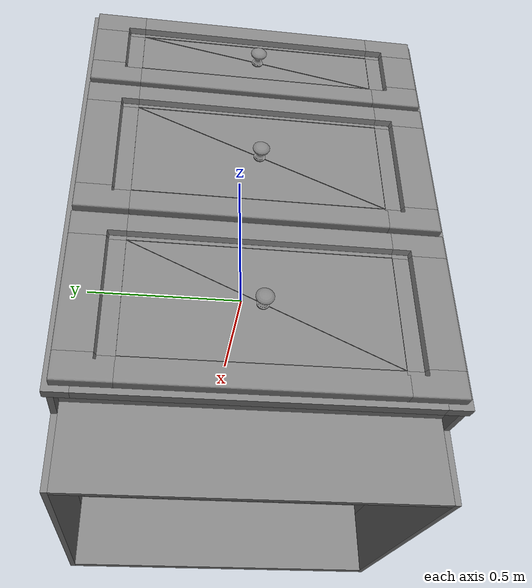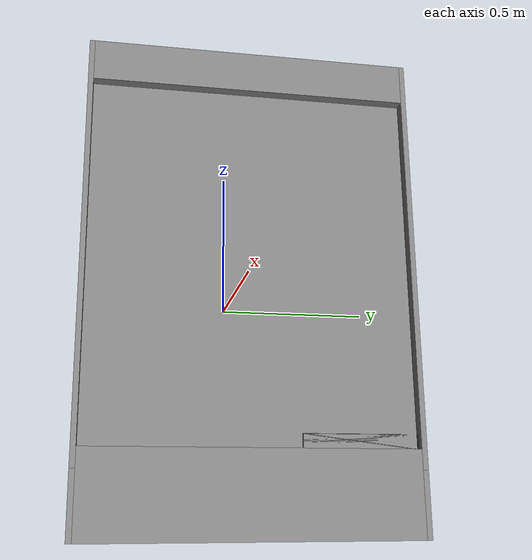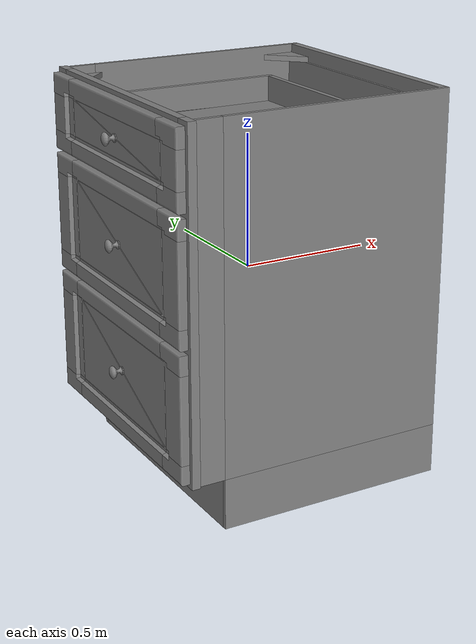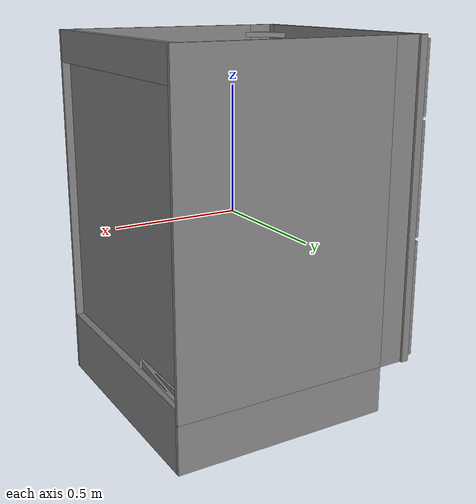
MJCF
<mujoco model="partnet_1566915c8a69d58812de5317fe5b354f">
    <compiler angle="radian" />
    <size njmax="500" nconmax="100" />
    <asset>
        <mesh name="original-86" file="original-86.stl" />
        <mesh name="original-85" file="original-85.stl" />
        <mesh name="original-82" file="original-82.stl" />
        <mesh name="original-79" file="original-79.stl" />
        <mesh name="original-83" file="original-83.stl" />
        <mesh name="original-80" file="original-80.stl" />
        <mesh name="original-84" file="original-84.stl" />
        <mesh name="original-81" file="original-81.stl" />
        <mesh name="original-88" file="original-88.stl" />
        <mesh name="original-72" file="original-72.stl" />
        <mesh name="original-89" file="original-89.stl" />
        <mesh name="original-71" file="original-71.stl" />
        <mesh name="original-76" file="original-76.stl" />
        <mesh name="original-77" file="original-77.stl" />
        <mesh name="original-75" file="original-75.stl" />
        <mesh name="original-74" file="original-74.stl" />
        <mesh name="original-90" file="original-90.stl" />
        <mesh name="original-50" file="original-50.stl" />
        <mesh name="original-57" file="original-57.stl" />
        <mesh name="original-63" file="original-63.stl" />
        <mesh name="original-60" file="original-60.stl" />
        <mesh name="original-62" file="original-62.stl" />
        <mesh name="original-59" file="original-59.stl" />
        <mesh name="original-64" file="original-64.stl" />
        <mesh name="original-58" file="original-58.stl" />
        <mesh name="original-61" file="original-61.stl" />
        <mesh name="original-66" file="original-66.stl" />
        <mesh name="original-67" file="original-67.stl" />
        <mesh name="original-49" file="original-49.stl" />
        <mesh name="original-54" file="original-54.stl" />
        <mesh name="original-55" file="original-55.stl" />
        <mesh name="original-53" file="original-53.stl" />
        <mesh name="original-52" file="original-52.stl" />
        <mesh name="original-68" file="original-68.stl" />
        <mesh name="original-28" file="original-28.stl" />
        <mesh name="original-44" file="original-44.stl" />
        <mesh name="original-41" file="original-41.stl" />
        <mesh name="original-35" file="original-35.stl" />
        <mesh name="original-39" file="original-39.stl" />
        <mesh name="original-36" file="original-36.stl" />
        <mesh name="original-42" file="original-42.stl" />
        <mesh name="original-37" file="original-37.stl" />
        <mesh name="original-40" file="original-40.stl" />
        <mesh name="original-38" file="original-38.stl" />
        <mesh name="original-45" file="original-45.stl" />
        <mesh name="original-27" file="original-27.stl" />
        <mesh name="original-32" file="original-32.stl" />
        <mesh name="original-33" file="original-33.stl" />
        <mesh name="original-30" file="original-30.stl" />
        <mesh name="original-31" file="original-31.stl" />
        <mesh name="original-46" file="original-46.stl" />
        <mesh name="original-3" file="original-3.stl" />
        <mesh name="original-7" file="original-7.stl" />
        <mesh name="original-8" file="original-8.stl" />
        <mesh name="original-24" file="original-24.stl" />
        <mesh name="original-17" file="original-17.stl" />
        <mesh name="original-6" file="original-6.stl" />
        <mesh name="original-4" file="original-4.stl" />
        <mesh name="original-11" file="original-11.stl" />
        <mesh name="original-10" file="original-10.stl" />
        <mesh name="original-15" file="original-15.stl" />
        <mesh name="original-14" file="original-14.stl" />
        <mesh name="original-91" file="original-91.stl" />
        <mesh name="original-5" file="original-5.stl" />
        <mesh name="original-2" file="original-2.stl" />
        <mesh name="original-22" file="original-22.stl" />
        <mesh name="original-23" file="original-23.stl" />
        <mesh name="original-21" file="original-21.stl" />
        <mesh name="original-20" file="original-20.stl" />
        <mesh name="original-18" file="original-18.stl" />
        <mesh name="original-12" file="original-12.stl" />
        <mesh name="original-19" file="original-19.stl" />
        <mesh name="original-16" file="original-16.stl" />
    </asset>
    <worldbody>
    <body>
        <body name="object" >
        <geom quat="0.5 0.5 -0.5 -0.5" type="mesh" group="0" mesh="original-3" />
        <geom quat="0.5 0.5 -0.5 -0.5" type="mesh" group="0" mesh="original-7" />
        <geom quat="0.5 0.5 -0.5 -0.5" type="mesh" group="0" mesh="original-8" />
        <geom quat="0.5 0.5 -0.5 -0.5" type="mesh" group="0" mesh="original-24" />
        <geom quat="0.5 0.5 -0.5 -0.5" type="mesh" group="0" mesh="original-17" />
        <geom quat="0.5 0.5 -0.5 -0.5" type="mesh" group="0" mesh="original-6" />
        <geom quat="0.5 0.5 -0.5 -0.5" type="mesh" group="0" mesh="original-4" />
        <geom quat="0.5 0.5 -0.5 -0.5" type="mesh" group="0" mesh="original-11" />
        <geom quat="0.5 0.5 -0.5 -0.5" type="mesh" group="0" mesh="original-10" />
        <geom quat="0.5 0.5 -0.5 -0.5" type="mesh" group="0" mesh="original-15" />
        <geom quat="0.5 0.5 -0.5 -0.5" type="mesh" group="0" mesh="original-14" />
        <geom quat="0.5 0.5 -0.5 -0.5" type="mesh" group="0" mesh="original-91" />
        <geom quat="0.5 0.5 -0.5 -0.5" type="mesh" group="0" mesh="original-5" />
        <geom quat="0.5 0.5 -0.5 -0.5" type="mesh" group="0" mesh="original-2" />
        <geom quat="0.5 0.5 -0.5 -0.5" type="mesh" group="0" mesh="original-22" />
        <geom quat="0.5 0.5 -0.5 -0.5" type="mesh" group="0" mesh="original-23" />
        <geom quat="0.5 0.5 -0.5 -0.5" type="mesh" group="0" mesh="original-21" />
        <geom quat="0.5 0.5 -0.5 -0.5" type="mesh" group="0" mesh="original-20" />
        <geom quat="0.5 0.5 -0.5 -0.5" type="mesh" group="0" mesh="original-18" />
        <geom quat="0.5 0.5 -0.5 -0.5" type="mesh" group="0" mesh="original-12" />
        <geom quat="0.5 0.5 -0.5 -0.5" type="mesh" group="0" mesh="original-19" />
        <geom quat="0.5 0.5 -0.5 -0.5" type="mesh" group="0" mesh="original-16" />
        <body name="link_2" pos="-0.513337 -0.0525293 -0.297055" quat="0.5 0.5 -0.5 -0.5">
            <inertial pos="-0.0641765 -0.0544198 -0.339475" quat="0.706943 -0.0152278 0.0152368 0.706942" mass="44.3724" diaginertia="8.44742 5.25753 4.41421" />
            <joint name="joint_2" pos="0 0 0" axis="0 0 1" type="slide" limited="true" range="0 0.8" />
            <geom pos="-0.0525293 0.297055 -0.513337" type="mesh" group="0" mesh="original-86" />
            <geom pos="-0.0525293 0.297055 -0.513337" type="mesh" group="0" mesh="original-85" />
            <geom pos="-0.0525293 0.297055 -0.513337" type="mesh" group="0" mesh="original-82" />
            <geom pos="-0.0525293 0.297055 -0.513337" type="mesh" group="0" mesh="original-79" />
            <geom pos="-0.0525293 0.297055 -0.513337" type="mesh" group="0" mesh="original-83" />
            <geom pos="-0.0525293 0.297055 -0.513337" type="mesh" group="0" mesh="original-80" />
            <geom pos="-0.0525293 0.297055 -0.513337" type="mesh" group="0" mesh="original-84" />
            <geom pos="-0.0525293 0.297055 -0.513337" type="mesh" group="0" mesh="original-81" />
            <geom pos="-0.0525293 0.297055 -0.513337" type="mesh" group="0" mesh="original-88" />
            <geom pos="-0.0525293 0.297055 -0.513337" type="mesh" group="0" mesh="original-72" />
            <geom pos="-0.0525293 0.297055 -0.513337" type="mesh" group="0" mesh="original-89" />
            <geom pos="-0.0525293 0.297055 -0.513337" type="mesh" group="0" mesh="original-71" />
            <geom pos="-0.0525293 0.297055 -0.513337" type="mesh" group="0" mesh="original-76" />
            <geom pos="-0.0525293 0.297055 -0.513337" type="mesh" group="0" mesh="original-77" />
            <geom pos="-0.0525293 0.297055 -0.513337" type="mesh" group="0" mesh="original-75" />
            <geom pos="-0.0525293 0.297055 -0.513337" type="mesh" group="0" mesh="original-74" />
            <geom pos="-0.0525293 0.297055 -0.513337" type="mesh" group="0" mesh="original-90" />
        </body>
        <body name="link_1" pos="0.471474 0.0219196 0.133535" quat="0.5 0.5 -0.5 -0.5">
            <inertial pos="0.0102723 -0.0150884 0.641804" quat="0.706911 -0.0166594 0.0166682 0.70691" mass="43.9123" diaginertia="8.35386 5.18171 4.34766" />
            <joint name="joint_1" pos="0 0 0" axis="0 0 1" type="slide" limited="true" range="0 0.8" />
            <geom pos="0.0219196 -0.133535 0.471474" type="mesh" group="0" mesh="original-50" />
            <geom pos="0.0219196 -0.133535 0.471474" type="mesh" group="0" mesh="original-57" />
            <geom pos="0.0219196 -0.133535 0.471474" type="mesh" group="0" mesh="original-63" />
            <geom pos="0.0219196 -0.133535 0.471474" type="mesh" group="0" mesh="original-60" />
            <geom pos="0.0219196 -0.133535 0.471474" type="mesh" group="0" mesh="original-62" />
            <geom pos="0.0219196 -0.133535 0.471474" type="mesh" group="0" mesh="original-59" />
            <geom pos="0.0219196 -0.133535 0.471474" type="mesh" group="0" mesh="original-64" />
            <geom pos="0.0219196 -0.133535 0.471474" type="mesh" group="0" mesh="original-58" />
            <geom pos="0.0219196 -0.133535 0.471474" type="mesh" group="0" mesh="original-61" />
            <geom pos="0.0219196 -0.133535 0.471474" type="mesh" group="0" mesh="original-66" />
            <geom pos="0.0219196 -0.133535 0.471474" type="mesh" group="0" mesh="original-67" />
            <geom pos="0.0219196 -0.133535 0.471474" type="mesh" group="0" mesh="original-49" />
            <geom pos="0.0219196 -0.133535 0.471474" type="mesh" group="0" mesh="original-54" />
            <geom pos="0.0219196 -0.133535 0.471474" type="mesh" group="0" mesh="original-55" />
            <geom pos="0.0219196 -0.133535 0.471474" type="mesh" group="0" mesh="original-53" />
            <geom pos="0.0219196 -0.133535 0.471474" type="mesh" group="0" mesh="original-52" />
            <geom pos="0.0219196 -0.133535 0.471474" type="mesh" group="0" mesh="original-68" />
        </body>
        <body name="link_0" pos="2.47147 -0.0158167 0.497994" quat="0.5 0.5 -0.5 -0.5">
            <inertial pos="-0.0274629 0.0265543 2.64983" quat="0.707063 -0.0078916 0.00789768 0.707063" mass="26.7204" diaginertia="4.59751 2.62034 2.11927" />
            <joint name="joint_0" pos="0 0 0" axis="0 0 1" type="slide" limited="true" range="0 0.8" />
            <geom pos="-0.0158167 -0.497994 2.47147" type="mesh" group="0" mesh="original-28" />
            <geom pos="-0.0158167 -0.497994 2.47147" type="mesh" group="0" mesh="original-44" />
            <geom pos="-0.0158167 -0.497994 2.47147" type="mesh" group="0" mesh="original-41" />
            <geom pos="-0.0158167 -0.497994 2.47147" type="mesh" group="0" mesh="original-35" />
            <geom pos="-0.0158167 -0.497994 2.47147" type="mesh" group="0" mesh="original-39" />
            <geom pos="-0.0158167 -0.497994 2.47147" type="mesh" group="0" mesh="original-36" />
            <geom pos="-0.0158167 -0.497994 2.47147" type="mesh" group="0" mesh="original-42" />
            <geom pos="-0.0158167 -0.497994 2.47147" type="mesh" group="0" mesh="original-37" />
            <geom pos="-0.0158167 -0.497994 2.47147" type="mesh" group="0" mesh="original-40" />
            <geom pos="-0.0158167 -0.497994 2.47147" type="mesh" group="0" mesh="original-38" />
            <geom pos="-0.0158167 -0.497994 2.47147" type="mesh" group="0" mesh="original-45" />
            <geom pos="-0.0158167 -0.497994 2.47147" type="mesh" group="0" mesh="original-27" />
            <geom pos="-0.0158167 -0.497994 2.47147" type="mesh" group="0" mesh="original-32" />
            <geom pos="-0.0158167 -0.497994 2.47147" type="mesh" group="0" mesh="original-33" />
            <geom pos="-0.0158167 -0.497994 2.47147" type="mesh" group="0" mesh="original-30" />
            <geom pos="-0.0158167 -0.497994 2.47147" type="mesh" group="0" mesh="original-31" />
            <geom pos="-0.0158167 -0.497994 2.47147" type="mesh" group="0" mesh="original-46" />
        </body>
    </body>
        <site name="bottom_site" pos="0 0 -0.3" rgba="0 0 0 0" size="0.005"/>
        <site name="top_site" pos="0 0 0.3" rgba="0 0 0 0" size="0.005"/>
        <site name="horizontal_radius_site" pos="0.3 0 0" rgba="0 0 0 0" size="0.1"/>
    </body>
    </worldbody>
</mujoco>
